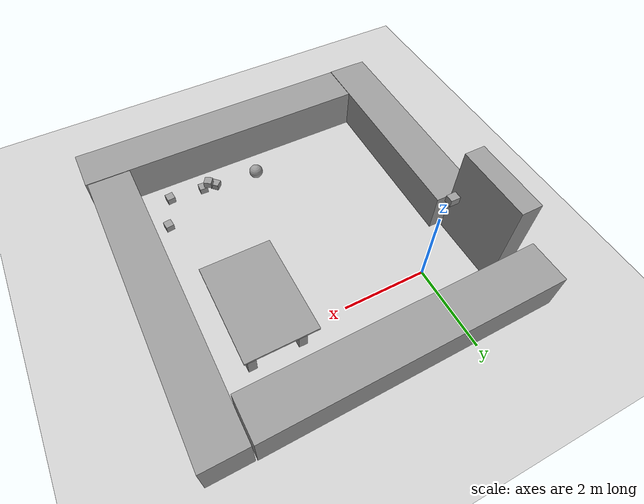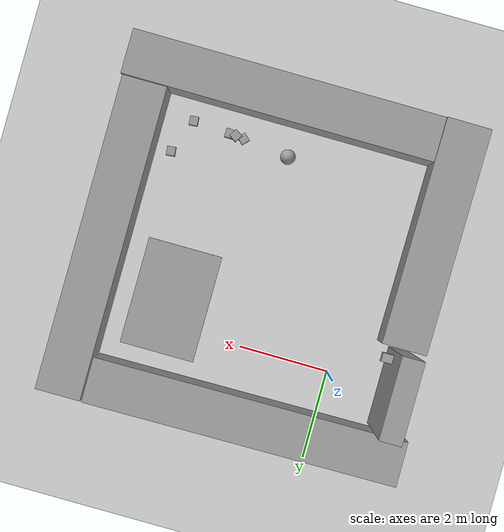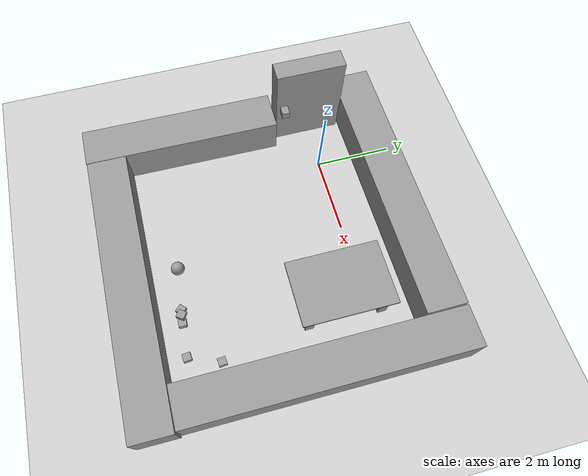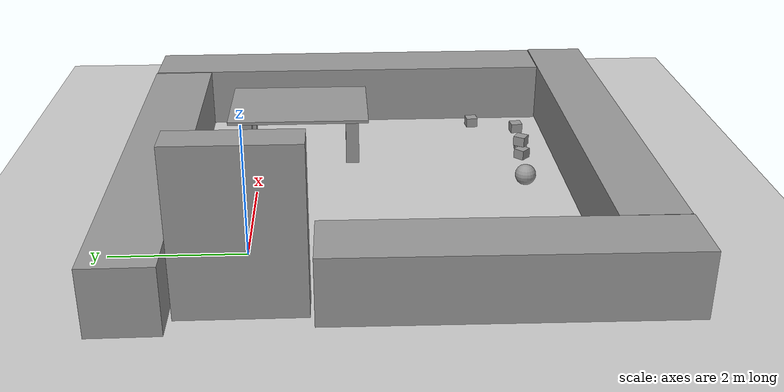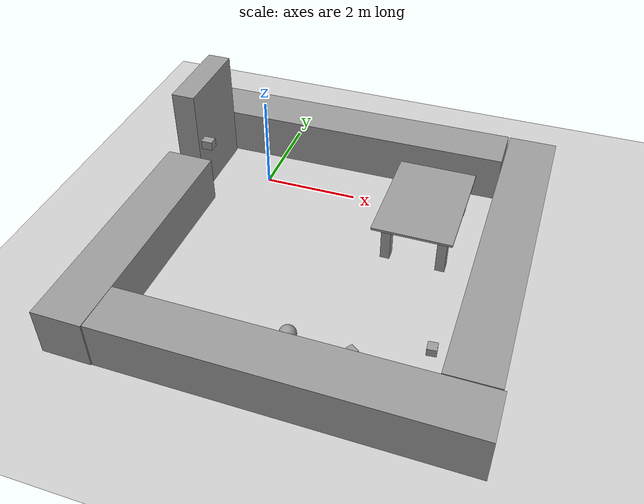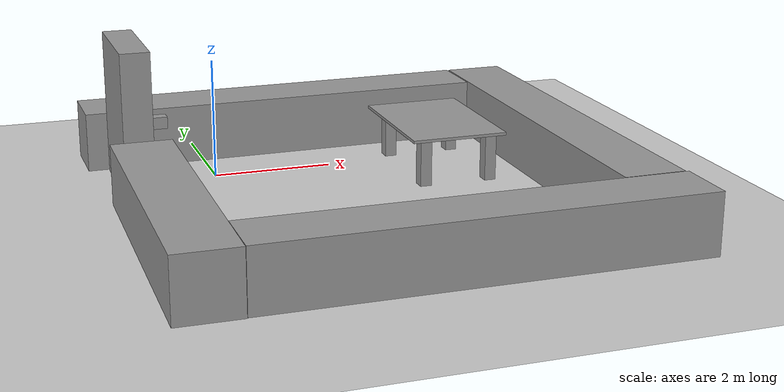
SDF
<sdf version="1.6">
 <world name="default">
  <light name="sun" type="directional">
   <pose>0 0 10 0 -0 0</pose>
   <diffuse>0.8 0.8 0.8 1</diffuse>
   <specular>0.1 0.1 0.1 1</specular>
   <attenuation>
    <range>1000</range>
    <constant>0.9</constant>
    <linear>0.01</linear>
    <quadratic>0.001</quadratic>
   </attenuation>
   <direction>-0.5 0.5 -1</direction>
  </light>
  <model name="ground_plane">
   <static>1</static>
   <link name="link">
    <collision name="collision">
     <geometry><plane><normal>0 0 1</normal><size>100 100</size></plane></geometry>
     <surface><friction><ode><mu>100</mu><mu2>50</mu2></ode></friction></surface>
    </collision>
    <visual name="visual">
     <cast_shadows>0</cast_shadows>
     <geometry><plane><normal>0 0 1</normal><size>100 100</size></plane></geometry>
     <material>
      <script><uri>file://media/materials/scripts/gazebo.material</uri><name>Gazebo/Grey</name></script>
     </material>
    </visual>
   </link>
  </model>
  <gravity>0 0 -9.8</gravity>
  <magnetic_field>6e-06 2.3e-05 -4.2e-05</magnetic_field>
  <atmosphere type="adiabatic"/>
  <physics name="default_physics" default="0" type="ode">
   <max_step_size>0.001</max_step_size>
   <real_time_factor>1</real_time_factor>
   <real_time_update_rate>1000</real_time_update_rate>
  </physics>
  <scene><ambient>0.4 0.4 0.4 1</ambient><background>0.7 0.7 0.7 1</background><shadows>1</shadows></scene>
  <spherical_coordinates>
   <surface_model>EARTH_WGS84</surface_model>
   <latitude_deg>0</latitude_deg>
   <longitude_deg>0</longitude_deg>
   <elevation>0</elevation>
   <heading_deg>0</heading_deg>
  </spherical_coordinates>
  <model name="unit_box_0_clone_0">
   <pose>2.56847 -5.54092 0.499757 0 6.9e-05 -0.003973</pose>
   <link name="link">
    <inertial>
     <mass>1</mass>
     <inertia><ixx>0</ixx><ixy>0</ixy><ixz>0</ixz><iyy>0</iyy><iyz>0</iyz><izz>0</izz></inertia>
    </inertial>
    <collision name="collision"><geometry><box><size>6.99949 1 1</size></box></geometry></collision>
    <visual name="visual">
     <geometry><box><size>6.99949 1 1</size></box></geometry>
     <material>
      <script><name>Gazebo/Grey</name><uri>file://media/materials/scripts/gazebo.material</uri></script>
     </material>
    </visual>
   </link>
  </model>
  <model name="unit_box_0_clone_clone">
   <pose>5.51882 -1.5364 0.5 0 0 -1.56906</pose>
   <link name="link">
    <inertial>
     <mass>1</mass>
     <inertia><ixx>0</ixx><ixy>0</ixy><ixz>0</ixz><iyy>0</iyy><iyz>0</iyz><izz>0</izz></inertia>
    </inertial>
    <collision name="collision"><geometry><box><size>6.99949 1 1</size></box></geometry></collision>
    <visual name="visual">
     <geometry><box><size>6.99949 1 1</size></box></geometry>
     <material>
      <script><name>Gazebo/Grey</name><uri>file://media/materials/scripts/gazebo.material</uri></script>
     </material>
    </visual>
   </link>
  </model>
  <model name="unit_box_1_clone">
   <pose>3.52007 -4.5228 0.082799 -5e-06 -5e-06 -0.030302</pose>
   <link name="link">
    <inertial>
     <mass>1</mass>
     <inertia>
      <ixx>0.166667</ixx>
      <ixy>0</ixy>
      <ixz>0</ixz>
      <iyy>0.166667</iyy>
      <iyz>0</iyz>
      <izz>0.166667</izz>
     </inertia>
    </inertial>
    <collision name="collision"><geometry><box><size>0.191631 0.199809 0.1656</size></box></geometry></collision>
    <visual name="visual">
     <geometry><box><size>0.191631 0.199809 0.1656</size></box></geometry>
     <material>
      <script><name>Gazebo/Grey</name><uri>file://media/materials/scripts/gazebo.material</uri></script>
     </material>
    </visual>
   </link>
  </model>
  <model name="unit_box_1_clone_clone">
   <pose>3.36311 -4.49632 0.248405 -2.6e-05 2.6e-05 -0.587975</pose>
   <link name="unit_box_1_clone_clone::unit_box_1_clone_clone::unit_box_1_clone_clone::unit_box_1_clone_clone::unit_box_1_clone_clone::link">
    <inertial>
     <mass>1</mass>
     <inertia>
      <ixx>0.166667</ixx>
      <ixy>0</ixy>
      <ixz>0</ixz>
      <iyy>0.166667</iyy>
      <iyz>0</iyz>
      <izz>0.166667</izz>
     </inertia>
    </inertial>
    <collision name="collision"><geometry><box><size>0.191631 0.199809 0.1656</size></box></geometry></collision>
    <visual name="visual">
     <geometry><box><size>0.191631 0.199809 0.1656</size></box></geometry>
     <material>
      <script><name>Gazebo/Grey</name><uri>file://media/materials/scripts/gazebo.material</uri></script>
     </material>
    </visual>
   </link>
  </model>
  <model name="unit_sphere_0">
   <pose>2.1278 -4.36385 0.170052 -0.01416 0.000776 0.003057</pose>
   <link name="link">
    <inertial>
     <mass>1</mass>
     <inertia><ixx>0.1</ixx><ixy>0</ixy><ixz>0</ixz><iyy>0.1</iyy><iyz>0</iyz><izz>0.1</izz></inertia>
    </inertial>
    <collision name="collision"><geometry><sphere><radius>0.170052</radius></sphere></geometry></collision>
    <visual name="visual">
     <geometry><sphere><radius>0.170052</radius></sphere></geometry>
     <material>
      <script><name>Gazebo/Grey</name><uri>file://media/materials/scripts/gazebo.material</uri></script>
     </material>
    </visual>
   </link>
  </model>
  <model name="unit_box_1_clone_clone_clone">
   <pose>3.18896 -4.49161 0.0828 0 -0 0.795468</pose>
   <link name="unit_box_1_clone_clone::unit_box_1_clone_clone::link">
    <inertial>
     <mass>1</mass>
     <inertia>
      <ixx>0.166667</ixx>
      <ixy>0</ixy>
      <ixz>0</ixz>
      <iyy>0.166667</iyy>
      <iyz>0</iyz>
      <izz>0.166667</izz>
     </inertia>
    </inertial>
    <collision name="collision"><geometry><box><size>0.191631 0.199809 0.1656</size></box></geometry></collision>
    <visual name="visual">
     <geometry><box><size>0.191631 0.199809 0.1656</size></box></geometry>
     <material>
      <script><name>Gazebo/Grey</name><uri>file://media/materials/scripts/gazebo.material</uri></script>
     </material>
    </visual>
   </link>
  </model>
  <model name="unit_box_1_clone_clone_clone_0">
   <pose>4.36148 -4.57856 0.0828 0 4e-06 0.090681</pose>
   <link name="unit_box_1_clone_clone::unit_box_1_clone_clone::link">
    <inertial>
     <mass>1</mass>
     <inertia>
      <ixx>0.166667</ixx>
      <ixy>0</ixy>
      <ixz>0</ixz>
      <iyy>0.166667</iyy>
      <iyz>0</iyz>
      <izz>0.166667</izz>
     </inertia>
    </inertial>
    <collision name="collision"><geometry><box><size>0.191631 0.199809 0.1656</size></box></geometry></collision>
    <visual name="visual">
     <geometry><box><size>0.191631 0.199809 0.1656</size></box></geometry>
     <material>
      <script><name>Gazebo/Grey</name><uri>file://media/materials/scripts/gazebo.material</uri></script>
     </material>
    </visual>
   </link>
  </model>
  <model name="unit_box_1_clone_clone_clone_1">
   <pose>4.66889 -3.79634 0.0828 -4e-06 -0 0.091041</pose>
   <link name="unit_box_1_clone_clone::unit_box_1_clone_clone::link">
    <inertial>
     <mass>1</mass>
     <inertia>
      <ixx>0.166667</ixx>
      <ixy>0</ixy>
      <ixz>0</ixz>
      <iyy>0.166667</iyy>
      <iyz>0</iyz>
      <izz>0.166667</izz>
     </inertia>
    </inertial>
    <collision name="collision"><geometry><box><size>0.191631 0.199809 0.1656</size></box></geometry></collision>
    <visual name="visual">
     <geometry><box><size>0.191631 0.199809 0.1656</size></box></geometry>
     <material>
      <script><name>Gazebo/Grey</name><uri>file://media/materials/scripts/gazebo.material</uri></script>
     </material>
    </visual>
   </link>
  </model>
  <model name="unit_box_2">
   <pose>-1.41937 -3.50889 0.499995 1e-06 3e-06 -0.009243</pose>
   <link name="link">
    <inertial>
     <mass>1</mass>
     <inertia>
      <ixx>0.166667</ixx>
      <ixy>0</ixy>
      <ixz>0</ixz>
      <iyy>0.166667</iyy>
      <iyz>0</iyz>
      <izz>0.166667</izz>
     </inertia>
    </inertial>
    <collision name="collision"><geometry><box><size>1 5.05969 1</size></box></geometry></collision>
    <visual name="visual">
     <geometry><box><size>1 5.05969 1</size></box></geometry>
     <material>
      <script><name>Gazebo/Grey</name><uri>file://media/materials/scripts/gazebo.material</uri></script>
     </material>
    </visual>
   </link>
  </model>
  <model name="unit_box_0_clone_0_clone">
   <pose>1.4816 1.44503 0.5 0 -0 0.00849</pose>
   <link name="link">
    <inertial>
     <mass>1</mass>
     <inertia><ixx>0</ixx><ixy>0</ixy><ixz>0</ixz><iyy>0</iyy><iyz>0</iyz><izz>0</izz></inertia>
    </inertial>
    <collision name="collision"><geometry><box><size>6.99949 1 1</size></box></geometry></collision>
    <visual name="visual">
     <geometry><box><size>6.99949 1 1</size></box></geometry>
     <material>
      <script><name>Gazebo/Grey</name><uri>file://media/materials/scripts/gazebo.material</uri></script>
     </material>
    </visual>
   </link>
  </model>
  <model name="unit_box_0">
   <pose>-1.42427 -0.028464 1.21559 -4e-06 1e-06 -1.1e-05</pose>
   <link name="unit_box_0::link">
    <inertial>
     <mass>1</mass>
     <inertia>
      <ixx>0.166667</ixx>
      <ixy>0</ixy>
      <ixz>0</ixz>
      <iyy>0.166667</iyy>
      <iyz>0</iyz>
      <izz>0.166667</izz>
     </inertia>
    </inertial>
    <collision name="collision"><geometry><box><size>0.487774 1.77265 2.43119</size></box></geometry></collision>
    <visual name="visual">
     <geometry><box><size>0.487774 1.77265 2.43119</size></box></geometry>
     <material>
      <script><name>Gazebo/Grey</name><uri>file://media/materials/scripts/gazebo.material</uri></script>
     </material>
    </visual>
   </link>
  </model>
  <model name="unit_box_1">
   <pose>-1.05257 -0.721728 1.23516 0 -0 0</pose>
   <link name="unit_box_1::link">
    <inertial>
     <mass>1</mass>
     <inertia>
      <ixx>0.166667</ixx>
      <ixy>0</ixy>
      <ixz>0</ixz>
      <iyy>0.166667</iyy>
      <iyz>0</iyz>
      <izz>0.166667</izz>
     </inertia>
    </inertial>
    <collision name="collision">
     <geometry><box><size>0.238713 0.191816 0.190692</size></box></geometry>
    </collision>
    <visual name="visual">
     <geometry><box><size>0.238713 0.191816 0.190692</size></box></geometry>
     <material>
      <script><name>Gazebo/Grey</name><uri>file://media/materials/scripts/gazebo.material</uri></script>
     </material>
    </visual>
    <gravity>0</gravity>
   </link>
  </model>
  <model name="unit_box_3">
   <pose>4.34593 0.257623 0.400076 0 -0 0.002986</pose>
   <link name="link">
    <inertial>
     <mass>1</mass>
     <inertia>
      <ixx>0.166667</ixx>
      <ixy>0</ixy>
      <ixz>0</ixz>
      <iyy>0.166667</iyy>
      <iyz>0</iyz>
      <izz>0.166667</izz>
     </inertia>
    </inertial>
    <collision name="collision"><geometry><box><size>0.19265 0.218178 0.800307</size></box></geometry></collision>
    <visual name="visual">
     <geometry><box><size>0.19265 0.218178 0.800307</size></box></geometry>
     <material>
      <script><name>Gazebo/Grey</name><uri>file://media/materials/scripts/gazebo.material</uri></script>
     </material>
    </visual>
   </link>
  </model>
  <model name="unit_box_3_clone">
   <pose>4.32602 -1.58314 0.400139 2e-06 -2e-06 0.000744</pose>
   <link name="link">
    <inertial>
     <mass>1</mass>
     <inertia>
      <ixx>0.166667</ixx>
      <ixy>0</ixy>
      <ixz>0</ixz>
      <iyy>0.166667</iyy>
      <iyz>0</iyz>
      <izz>0.166667</izz>
     </inertia>
    </inertial>
    <collision name="collision"><geometry><box><size>0.19265 0.218179 0.800307</size></box></geometry></collision>
    <visual name="visual">
     <geometry><box><size>0.19265 0.218179 0.800307</size></box></geometry>
     <material>
      <script><name>Gazebo/Grey</name><uri>file://media/materials/scripts/gazebo.material</uri></script>
     </material>
    </visual>
   </link>
  </model>
  <model name="unit_box_3_clone_0">
   <pose>3.18748 -1.55939 0.400098 -1e-06 4e-06 0.000185</pose>
   <link name="link">
    <inertial>
     <mass>1</mass>
     <inertia>
      <ixx>0.166667</ixx>
      <ixy>0</ixy>
      <ixz>0</ixz>
      <iyy>0.166667</iyy>
      <iyz>0</iyz>
      <izz>0.166667</izz>
     </inertia>
    </inertial>
    <collision name="collision"><geometry><box><size>0.19265 0.218179 0.800307</size></box></geometry></collision>
    <visual name="visual">
     <geometry><box><size>0.19265 0.218179 0.800307</size></box></geometry>
     <material>
      <script><name>Gazebo/Grey</name><uri>file://media/materials/scripts/gazebo.material</uri></script>
     </material>
    </visual>
   </link>
  </model>
  <model name="unit_box_3_clone_1">
   <pose>3.20024 0.241099 0.400139 4e-06 1e-06 0.000513</pose>
   <link name="link">
    <inertial>
     <mass>1</mass>
     <inertia>
      <ixx>0.166667</ixx>
      <ixy>0</ixy>
      <ixz>0</ixz>
      <iyy>0.166667</iyy>
      <iyz>0</iyz>
      <izz>0.166667</izz>
     </inertia>
    </inertial>
    <collision name="collision"><geometry><box><size>0.19265 0.218179 0.800307</size></box></geometry></collision>
    <visual name="visual">
     <geometry><box><size>0.19265 0.218179 0.800307</size></box></geometry>
     <material>
      <script><name>Gazebo/Grey</name><uri>file://media/materials/scripts/gazebo.material</uri></script>
     </material>
    </visual>
   </link>
  </model>
  <model name="unit_box_4">
   <pose>3.72463 -0.653813 0.824647 1.2e-05 -1.5e-05 0.000129</pose>
   <link name="link">
    <inertial>
     <mass>1</mass>
     <inertia>
      <ixx>0.166667</ixx>
      <ixy>0</ixy>
      <ixz>0</ixz>
      <iyy>0.166667</iyy>
      <iyz>0</iyz>
      <izz>0.166667</izz>
     </inertia>
    </inertial>
    <collision name="collision"><geometry><box><size>1.63338 2.34753 0.048709</size></box></geometry></collision>
    <visual name="visual">
     <geometry><box><size>1.63338 2.34753 0.048709</size></box></geometry>
     <material>
      <script><name>Gazebo/Grey</name><uri>file://media/materials/scripts/gazebo.material</uri></script>
     </material>
    </visual>
   </link>
  </model>
 </world>
</sdf>
